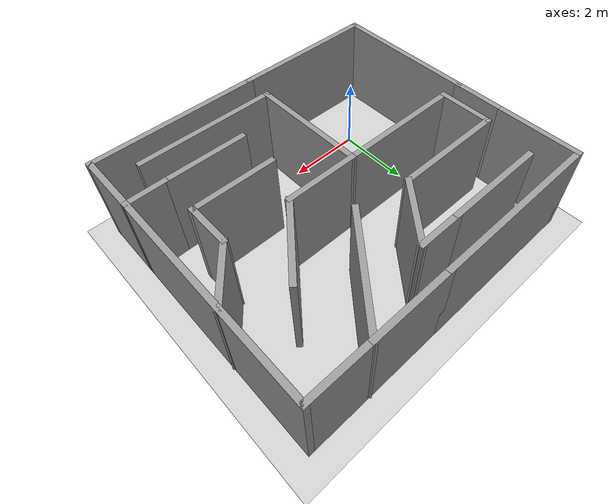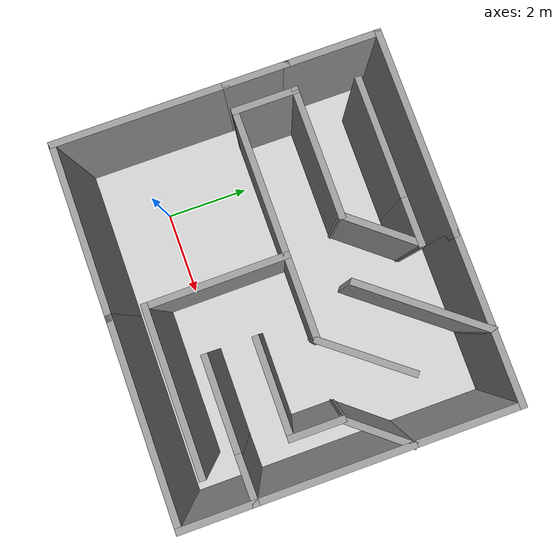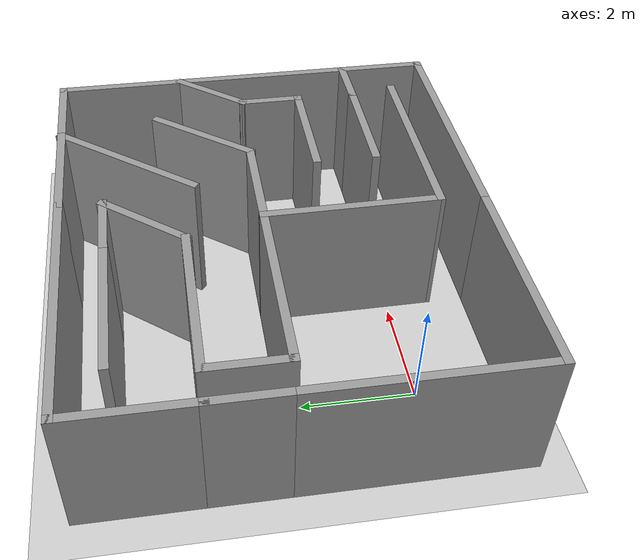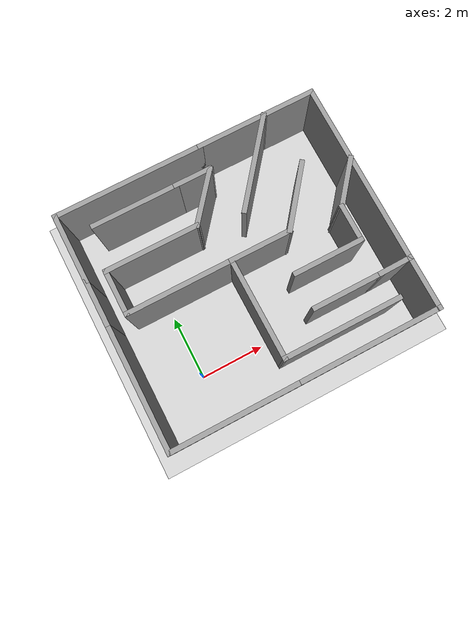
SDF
<sdf version="1.4">
  <world name="default">

    <scene>
      <ambient>0.4 0.4 0.4 1</ambient>
      <background>0.7 0.7 0.7 1</background>
      <shadows>true</shadows>
    </scene>

    <!-- A global light source -->
    <include>
      <uri>model://sun</uri>
    </include>

    <!-- A ground plane -->
    <include>
      <uri>model://ground_plane</uri>
    </include>
    <physics type="ode">
      <gravity>0 0 -9.81</gravity> <!-- Стандартное значение гравитации в м/с² -->
    </physics>

  <model name='TRACE'>
    <pose>2.52756 2.12668 0 0 -0 0</pose>
    <link name='Wall_12'>
      <collision name='Wall_12_Collision'>
        <geometry>
          <box>
            <size>4 0.15 2.5</size>
          </box>
        </geometry>
        <pose>0 0 1.25 0 -0 0</pose>
      </collision>
      <visual name='Wall_12_Visual'>
        <pose>0 0 1.25 0 -0 0</pose>
        <geometry>
          <box>
            <size>4 0.15 2.5</size>
          </box>
        </geometry>
        <material>
          <script>
            <uri>file://media/materials/scripts/gazebo.material</uri>
            <name>Gazebo/Grey</name>
          </script>
          <ambient>1 1 1 1</ambient>
        </material>
        <meta>
          <layer>0</layer>
        </meta>
      </visual>
      <pose>-2.24025 -3.66519 0 0 -0 3.14159</pose>
    </link>
    <link name='Wall_13'>
      <collision name='Wall_13_Collision'>
        <geometry>
          <box>
            <size>4 0.15 2.5</size>
          </box>
        </geometry>
        <pose>0 0 1.25 0 -0 0</pose>
      </collision>
      <visual name='Wall_13_Visual'>
        <pose>0 0 1.25 0 -0 0</pose>
        <geometry>
          <box>
            <size>4 0.15 2.5</size>
          </box>
        </geometry>
        <material>
          <script>
            <uri>file://media/materials/scripts/gazebo.material</uri>
            <name>Gazebo/Grey</name>
          </script>
          <ambient>1 1 1 1</ambient>
        </material>
        <meta>
          <layer>0</layer>
        </meta>
      </visual>
      <pose>-4.16526 -1.74019 0 0 -0 1.5708</pose>
    </link>
    <link name='Wall_22'>
      <collision name='Wall_22_Collision'>
        <geometry>
          <box>
            <size>1.5 0.15 2.5</size>
          </box>
        </geometry>
        <pose>0 0 1.25 0 -0 0</pose>
      </collision>
      <visual name='Wall_22_Visual'>
        <pose>0 0 1.25 0 -0 0</pose>
        <geometry>
          <box>
            <size>1.5 0.15 2.5</size>
          </box>
        </geometry>
        <material>
          <script>
            <uri>file://media/materials/scripts/gazebo.material</uri>
            <name>Gazebo/Grey</name>
          </script>
          <ambient>1 1 1 1</ambient>
        </material>
        <meta>
          <layer>0</layer>
        </meta>
      </visual>
      <pose>-4.16526 0.859808 0 0 -0 1.5708</pose>
    </link>
    <link name='Wall_25'>
      <collision name='Wall_25_Collision'>
        <geometry>
          <box>
            <size>1.5 0.15 2.5</size>
          </box>
        </geometry>
        <pose>0 0 1.25 0 -0 0</pose>
      </collision>
      <visual name='Wall_25_Visual'>
        <pose>0 0 1.25 0 -0 0</pose>
        <geometry>
          <box>
            <size>1.5 0.15 2.5</size>
          </box>
        </geometry>
        <material>
          <script>
            <uri>file://media/materials/scripts/gazebo.material</uri>
            <name>Gazebo/Grey</name>
          </script>
          <ambient>1 1 1 1</ambient>
        </material>
        <meta>
          <layer>0</layer>
        </meta>
      </visual>
      <pose>-3.56526 0.859808 0 0 -0 -1.5708</pose>
    </link>
    <link name='Wall_27'>
      <collision name='Wall_27_Collision'>
        <geometry>
          <box>
            <size>3.4 0.15 2.5</size>
          </box>
        </geometry>
        <pose>0 0 1.25 0 -0 0</pose>
      </collision>
      <visual name='Wall_27_Visual'>
        <pose>0 0 1.25 0 -0 0</pose>
        <geometry>
          <box>
            <size>3.4 0.15 2.5</size>
          </box>
        </geometry>
        <material>
          <script>
            <uri>file://media/materials/scripts/gazebo.material</uri>
            <name>Gazebo/Grey</name>
          </script>
          <ambient>1 1 1 1</ambient>
        </material>
        <meta>
          <layer>0</layer>
        </meta>
      </visual>
      <pose>-1.94026 0.184808 0 0 -0 0</pose>
    </link>
    <link name='Wall_33'>
      <collision name='Wall_33_Collision'>
        <geometry>
          <box>
            <size>3 0.15 2.5</size>
          </box>
        </geometry>
        <pose>0 0 1.25 0 -0 0</pose>
      </collision>
      <visual name='Wall_33_Visual'>
        <pose>0 0 1.25 0 -0 0</pose>
        <geometry>
          <box>
            <size>3 0.15 2.5</size>
          </box>
        </geometry>
        <material>
          <script>
            <uri>file://media/materials/scripts/gazebo.material</uri>
            <name>Gazebo/Grey</name>
          </script>
          <ambient>1 1 1 1</ambient>
        </material>
        <meta>
          <layer>0</layer>
        </meta>
      </visual>
      <pose>-2.14025 1.53481 0 0 -0 0</pose>
    </link>
    <link name='Wall_35'>
      <collision name='Wall_35_Collision'>
        <geometry>
          <box>
            <size>2.75865 0.15 2.5</size>
          </box>
        </geometry>
        <pose>0 0 1.25 0 -0 0</pose>
      </collision>
      <visual name='Wall_35_Visual'>
        <pose>0 0 1.25 0 -0 0</pose>
        <geometry>
          <box>
            <size>2.75865 0.15 2.5</size>
          </box>
        </geometry>
        <material>
          <script>
            <uri>file://media/materials/scripts/gazebo.material</uri>
            <name>Gazebo/Grey</name>
          </script>
          <ambient>1 1 1 1</ambient>
        </material>
        <meta>
          <layer>0</layer>
        </meta>
      </visual>
      <pose>-2.01958 2.88481 0 0 -0 3.14159</pose>
    </link>
    <link name='Wall_39'>
      <collision name='Wall_39_Collision'>
        <geometry>
          <box>
            <size>2.25 0.15 2.5</size>
          </box>
        </geometry>
        <pose>0 0 1.25 0 -0 0</pose>
      </collision>
      <visual name='Wall_39_Visual'>
        <pose>0 0 1.25 0 -0 0</pose>
        <geometry>
          <box>
            <size>2.25 0.15 2.5</size>
          </box>
        </geometry>
        <material>
          <script>
            <uri>file://media/materials/scripts/gazebo.material</uri>
            <name>Gazebo/Grey</name>
          </script>
          <ambient>1 1 1 1</ambient>
        </material>
        <meta>
          <layer>0</layer>
        </meta>
      </visual>
      <pose>-4.16526 2.58481 0 0 -0 1.5708</pose>
    </link>
    <link name='Wall_43'>
      <collision name='Wall_43_Collision'>
        <geometry>
          <box>
            <size>4.75 0.15 2.5</size>
          </box>
        </geometry>
        <pose>0 0 1.25 0 -0 0</pose>
      </collision>
      <visual name='Wall_43_Visual'>
        <pose>0 0 1.25 0 -0 0</pose>
        <geometry>
          <box>
            <size>4.75 0.15 2.5</size>
          </box>
        </geometry>
        <material>
          <script>
            <uri>file://media/materials/scripts/gazebo.material</uri>
            <name>Gazebo/Grey</name>
          </script>
          <ambient>1 1 1 1</ambient>
        </material>
        <meta>
          <layer>0</layer>
        </meta>
      </visual>
      <pose>-1.86526 3.63481 0 0 -0 0</pose>
    </link>
    <link name='Wall_45'>
      <collision name='Wall_45_Collision'>
        <geometry>
          <box>
            <size>2.25 0.15 2.5</size>
          </box>
        </geometry>
        <pose>0 0 1.25 0 -0 0</pose>
      </collision>
      <visual name='Wall_45_Visual'>
        <pose>0 0 1.25 0 -0 0</pose>
        <geometry>
          <box>
            <size>2.25 0.15 2.5</size>
          </box>
        </geometry>
        <material>
          <script>
            <uri>file://media/materials/scripts/gazebo.material</uri>
            <name>Gazebo/Grey</name>
          </script>
          <ambient>1 1 1 1</ambient>
        </material>
        <meta>
          <layer>0</layer>
        </meta>
      </visual>
      <pose>1.48474 3.63481 0 0 -0 0</pose>
    </link>
    <link name='Wall_46'>
      <collision name='Wall_46_Collision'>
        <geometry>
          <box>
            <size>3.1415 0.15 2.5</size>
          </box>
        </geometry>
        <pose>0 0 1.25 0 -0 0</pose>
      </collision>
      <visual name='Wall_46_Visual'>
        <pose>0 0 1.25 0 -0 0</pose>
        <geometry>
          <box>
            <size>3.1415 0.15 2.5</size>
          </box>
        </geometry>
        <material>
          <script>
            <uri>file://media/materials/scripts/gazebo.material</uri>
            <name>Gazebo/Grey</name>
          </script>
          <ambient>1 1 1 1</ambient>
        </material>
        <meta>
          <layer>0</layer>
        </meta>
      </visual>
      <pose>1.60367 2.46418 0 0 -0 -2.2427</pose>
    </link>
    <link name='Wall_48'>
      <collision name='Wall_48_Collision'>
        <geometry>
          <box>
            <size>1.25 0.15 2.5</size>
          </box>
        </geometry>
        <pose>0 0 1.25 0 -0 0</pose>
      </collision>
      <visual name='Wall_48_Visual'>
        <pose>0 0 1.25 0 -0 0</pose>
        <geometry>
          <box>
            <size>1.25 0.15 2.5</size>
          </box>
        </geometry>
        <material>
          <script>
            <uri>file://media/materials/scripts/gazebo.material</uri>
            <name>Gazebo/Grey</name>
          </script>
          <ambient>1 1 1 1</ambient>
        </material>
        <meta>
          <layer>0</layer>
        </meta>
      </visual>
      <pose>-0.165255 2.88481 0 0 -0 0</pose>
    </link>
    <link name='Wall_49'>
      <collision name='Wall_49_Collision'>
        <geometry>
          <box>
            <size>1.89141 0.15 2.5</size>
          </box>
        </geometry>
        <pose>0 0 1.25 0 -0 0</pose>
      </collision>
      <visual name='Wall_49_Visual'>
        <pose>0 0 1.25 0 -0 0</pose>
        <geometry>
          <box>
            <size>1.89141 0.15 2.5</size>
          </box>
        </geometry>
        <material>
          <script>
            <uri>file://media/materials/scripts/gazebo.material</uri>
            <name>Gazebo/Grey</name>
          </script>
          <ambient>1 1 1 1</ambient>
        </material>
        <meta>
          <layer>0</layer>
        </meta>
      </visual>
      <pose>-0.165255 2.20981 0 0 -0 -2.25451</pose>
    </link>
    <link name='Wall_52'>
      <collision name='Wall_52_Collision'>
        <geometry>
          <box>
            <size>2 0.15 2.5</size>
          </box>
        </geometry>
        <pose>0 0 1.25 0 -0 0</pose>
      </collision>
      <visual name='Wall_52_Visual'>
        <pose>0 0 1.25 0 -0 0</pose>
        <geometry>
          <box>
            <size>2 0.15 2.5</size>
          </box>
        </geometry>
        <material>
          <script>
            <uri>file://media/materials/scripts/gazebo.material</uri>
            <name>Gazebo/Grey</name>
          </script>
          <ambient>1 1 1 1</ambient>
        </material>
        <meta>
          <layer>0</layer>
        </meta>
      </visual>
      <pose>0.609745 0.184808 0 0 -0 0</pose>
    </link>
    <link name='Wall_54'>
      <collision name='Wall_54_Collision'>
        <geometry>
          <box>
            <size>2.23424 0.15 2.5</size>
          </box>
        </geometry>
        <pose>0 0 1.25 0 -0 0</pose>
      </collision>
      <visual name='Wall_54_Visual'>
        <pose>0 0 1.25 0 -0 0</pose>
        <geometry>
          <box>
            <size>2.23424 0.15 2.5</size>
          </box>
        </geometry>
        <material>
          <script>
            <uri>file://media/materials/scripts/gazebo.material</uri>
            <name>Gazebo/Grey</name>
          </script>
          <ambient>1 1 1 1</ambient>
        </material>
        <meta>
          <layer>0</layer>
        </meta>
      </visual>
      <pose>2.17867 1.00418 0 0 -0 0.904724</pose>
    </link>
    <link name='Wall_56'>
      <collision name='Wall_56_Collision'>
        <geometry>
          <box>
            <size>1.75 0.15 2.5</size>
          </box>
        </geometry>
        <pose>0 0 1.25 0 -0 0</pose>
      </collision>
      <visual name='Wall_56_Visual'>
        <pose>0 0 1.25 0 -0 0</pose>
        <geometry>
          <box>
            <size>1.75 0.15 2.5</size>
          </box>
        </geometry>
        <material>
          <script>
            <uri>file://media/materials/scripts/gazebo.material</uri>
            <name>Gazebo/Grey</name>
          </script>
          <ambient>1 1 1 1</ambient>
        </material>
        <meta>
          <layer>0</layer>
        </meta>
      </visual>
      <pose>3.33474 3.63481 0 0 -0 0</pose>
    </link>
    <link name='Wall_58'>
      <collision name='Wall_58_Collision'>
        <geometry>
          <box>
            <size>2.5 0.15 2.5</size>
          </box>
        </geometry>
        <pose>0 0 1.25 0 -0 0</pose>
      </collision>
      <visual name='Wall_58_Visual'>
        <pose>0 0 1.25 0 -0 0</pose>
        <geometry>
          <box>
            <size>2.5 0.15 2.5</size>
          </box>
        </geometry>
        <material>
          <script>
            <uri>file://media/materials/scripts/gazebo.material</uri>
            <name>Gazebo/Grey</name>
          </script>
          <ambient>1 1 1 1</ambient>
        </material>
        <meta>
          <layer>0</layer>
        </meta>
      </visual>
      <pose>4.13475 2.45981 0 0 -0 -1.5708</pose>
    </link>
    <link name='Wall_61'>
      <collision name='Wall_61_Collision'>
        <geometry>
          <box>
            <size>1.65046 0.15 2.5</size>
          </box>
        </geometry>
        <pose>0 0 1.25 0 -0 0</pose>
      </collision>
      <visual name='Wall_61_Visual'>
        <pose>0 0 1.25 0 -0 0</pose>
        <geometry>
          <box>
            <size>1.65046 0.15 2.5</size>
          </box>
        </geometry>
        <material>
          <script>
            <uri>file://media/materials/scripts/gazebo.material</uri>
            <name>Gazebo/Grey</name>
          </script>
          <ambient>1 1 1 1</ambient>
        </material>
        <meta>
          <layer>0</layer>
        </meta>
      </visual>
      <pose>3.66132 0.702821 0 0 -0 -2.25369</pose>
    </link>
    <link name='Wall_62'>
      <collision name='Wall_62_Collision'>
        <geometry>
          <box>
            <size>1.25 0.15 2.5</size>
          </box>
        </geometry>
        <pose>0 0 1.25 0 -0 0</pose>
      </collision>
      <visual name='Wall_62_Visual'>
        <pose>0 0 1.25 0 -0 0</pose>
        <geometry>
          <box>
            <size>1.25 0.15 2.5</size>
          </box>
        </geometry>
        <material>
          <script>
            <uri>file://media/materials/scripts/gazebo.material</uri>
            <name>Gazebo/Grey</name>
          </script>
          <ambient>1 1 1 1</ambient>
        </material>
        <meta>
          <layer>0</layer>
        </meta>
      </visual>
      <pose>3.18789 -0.429167 0 0 -0 -1.5708</pose>
    </link>
    <link name='Wall_63'>
      <collision name='Wall_63_Collision'>
        <geometry>
          <box>
            <size>2.25 0.15 2.5</size>
          </box>
        </geometry>
        <pose>0 0 1.25 0 -0 0</pose>
      </collision>
      <visual name='Wall_63_Visual'>
        <pose>0 0 1.25 0 -0 0</pose>
        <geometry>
          <box>
            <size>2.25 0.15 2.5</size>
          </box>
        </geometry>
        <material>
          <script>
            <uri>file://media/materials/scripts/gazebo.material</uri>
            <name>Gazebo/Grey</name>
          </script>
          <ambient>1 1 1 1</ambient>
        </material>
        <meta>
          <layer>0</layer>
        </meta>
      </visual>
      <pose>2.13789 -0.979167 0 0 -0 3.14159</pose>
    </link>
    <link name='Wall_66'>
      <collision name='Wall_66_Collision'>
        <geometry>
          <box>
            <size>2.25 0.15 2.5</size>
          </box>
        </geometry>
        <pose>0 0 1.25 0 -0 0</pose>
      </collision>
      <visual name='Wall_66_Visual'>
        <pose>0 0 1.25 0 -0 0</pose>
        <geometry>
          <box>
            <size>2.25 0.15 2.5</size>
          </box>
        </geometry>
        <material>
          <script>
            <uri>file://media/materials/scripts/gazebo.material</uri>
            <name>Gazebo/Grey</name>
          </script>
          <ambient>1 1 1 1</ambient>
        </material>
        <meta>
          <layer>0</layer>
        </meta>
      </visual>
      <pose>2.13789 -2.07917 0 0 -0 3.14159</pose>
    </link>
    <link name='Wall_68'>
      <collision name='Wall_68_Collision'>
        <geometry>
          <box>
            <size>3.5 0.15 2.5</size>
          </box>
        </geometry>
        <pose>0 0 1.25 0 -0 0</pose>
      </collision>
      <visual name='Wall_68_Visual'>
        <pose>0 0 1.25 0 -0 0</pose>
        <geometry>
          <box>
            <size>3.5 0.15 2.5</size>
          </box>
        </geometry>
        <material>
          <script>
            <uri>file://media/materials/scripts/gazebo.material</uri>
            <name>Gazebo/Grey</name>
          </script>
          <ambient>1 1 1 1</ambient>
        </material>
        <meta>
          <layer>0</layer>
        </meta>
      </visual>
      <pose>4.13475 -0.390192 0 0 -0 -1.5708</pose>
    </link>
    <link name='Wall_69'>
      <collision name='Wall_69_Collision'>
        <geometry>
          <box>
            <size>1.09695 0.15 2.5</size>
          </box>
        </geometry>
        <pose>0 0 1.25 0 -0 0</pose>
      </collision>
      <visual name='Wall_69_Visual'>
        <pose>0 0 1.25 0 -0 0</pose>
        <geometry>
          <box>
            <size>1.09695 0.15 2.5</size>
          </box>
        </geometry>
        <material>
          <script>
            <uri>file://media/materials/scripts/gazebo.material</uri>
            <name>Gazebo/Grey</name>
          </script>
          <ambient>1 1 1 1</ambient>
        </material>
        <meta>
          <layer>0</layer>
        </meta>
      </visual>
      <pose>3.66132 -2.07218 0 0 -0 -3.12683</pose>
    </link>
    <link name='Wall_71'>
      <collision name='Wall_71_Collision'>
        <geometry>
          <box>
            <size>3.75 0.15 2.5</size>
          </box>
        </geometry>
        <pose>0 0 1.25 0 -0 0</pose>
      </collision>
      <visual name='Wall_71_Visual'>
        <pose>0 0 1.25 0 -0 0</pose>
        <geometry>
          <box>
            <size>3.75 0.15 2.5</size>
          </box>
        </geometry>
        <material>
          <script>
            <uri>file://media/materials/scripts/gazebo.material</uri>
            <name>Gazebo/Grey</name>
          </script>
          <ambient>1 1 1 1</ambient>
        </material>
        <meta>
          <layer>0</layer>
        </meta>
      </visual>
      <pose>1.50511 -2.90511 0 0 -0 0</pose>
    </link>
    <link name='Wall_73'>
      <collision name='Wall_73_Collision'>
        <geometry>
          <box>
            <size>1.75 0.15 2.5</size>
          </box>
        </geometry>
        <pose>0 0 1.25 0 -0 0</pose>
      </collision>
      <visual name='Wall_73_Visual'>
        <pose>0 0 1.25 0 -0 0</pose>
        <geometry>
          <box>
            <size>1.75 0.15 2.5</size>
          </box>
        </geometry>
        <material>
          <script>
            <uri>file://media/materials/scripts/gazebo.material</uri>
            <name>Gazebo/Grey</name>
          </script>
          <ambient>1 1 1 1</ambient>
        </material>
        <meta>
          <layer>0</layer>
        </meta>
      </visual>
      <pose>4.13475 -2.86519 0 0 -0 -1.5708</pose>
    </link>
    <link name='Wall_74'>
      <collision name='Wall_74_Collision'>
        <geometry>
          <box>
            <size>4.6 0.15 2.5</size>
          </box>
        </geometry>
        <pose>0 0 1.25 0 -0 0</pose>
      </collision>
      <visual name='Wall_74_Visual'>
        <pose>0 0 1.25 0 -0 0</pose>
        <geometry>
          <box>
            <size>4.6 0.15 2.5</size>
          </box>
        </geometry>
        <material>
          <script>
            <uri>file://media/materials/scripts/gazebo.material</uri>
            <name>Gazebo/Grey</name>
          </script>
          <ambient>1 1 1 1</ambient>
        </material>
        <meta>
          <layer>0</layer>
        </meta>
      </visual>
      <pose>1.90975 -3.66519 0 0 -0 3.14159</pose>
    </link>
    <link name='Wall_76'>
      <collision name='Wall_76_Collision'>
        <geometry>
          <box>
            <size>3.23999 0.15 2.5</size>
          </box>
        </geometry>
        <pose>0 0 1.25 0 -0 0</pose>
      </collision>
      <visual name='Wall_76_Visual'>
        <pose>0 0 1.25 0 -0 0</pose>
        <geometry>
          <box>
            <size>3.23999 0.15 2.5</size>
          </box>
        </geometry>
        <material>
          <script>
            <uri>file://media/materials/scripts/gazebo.material</uri>
            <name>Gazebo/Grey</name>
          </script>
          <ambient>1 1 1 1</ambient>
        </material>
        <meta>
          <layer>0</layer>
        </meta>
      </visual>
      <pose>-0.305072 -1.36015 0 0 -0 1.57739</pose>
    </link>
    <static>1</static>
  </model>

    <physics type="ode">
      <real_time_update_rate>1000.0</real_time_update_rate>
      <max_step_size>0.001</max_step_size>
      <real_time_factor>1</real_time_factor>
      <ode>
        <solver>
          <type>quick</type>
          <iters>150</iters>
          <precon_iters>0</precon_iters>
          <sor>1.400000</sor>
          <use_dynamic_moi_rescaling>1</use_dynamic_moi_rescaling>
        </solver>
        <constraints>
          <cfm>0.00001</cfm>
          <erp>0.2</erp>
          <contact_max_correcting_vel>2000.000000</contact_max_correcting_vel>
          <contact_surface_layer>0.01000</contact_surface_layer>
        </constraints>
      </ode>
    </physics>
  </world>

</sdf>
